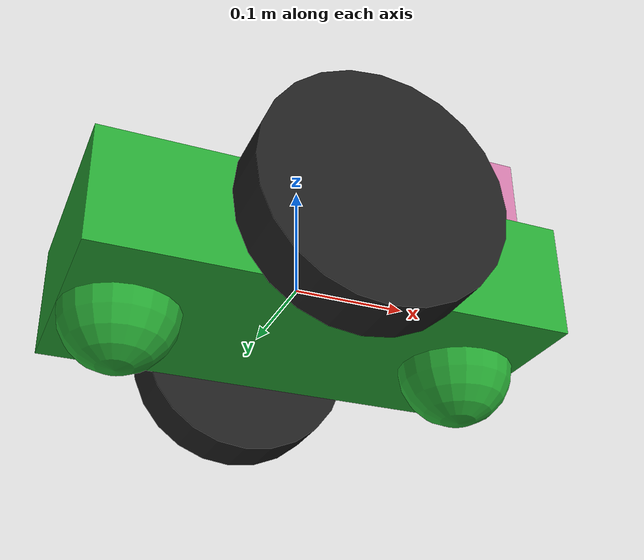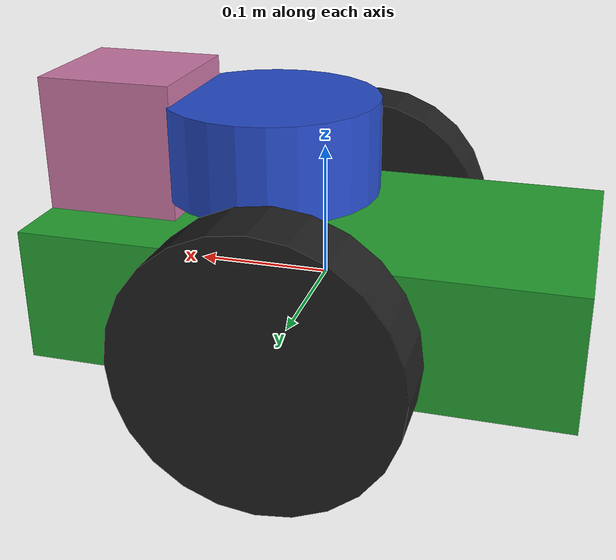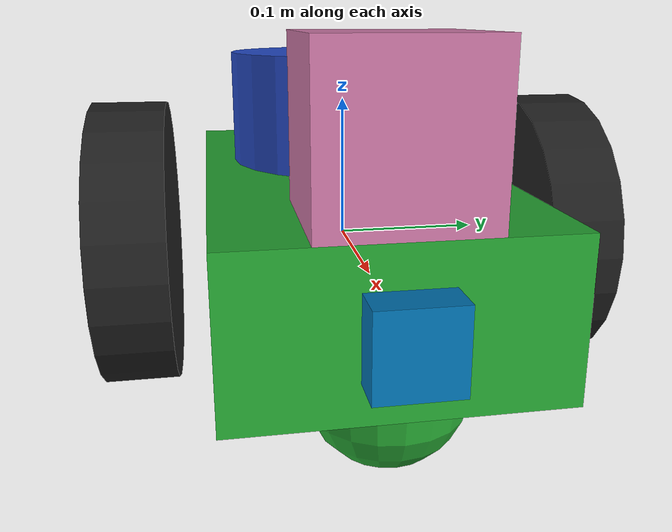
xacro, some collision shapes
<?xml version='1.0'?>

<robot name="my_robot" xmlns:xacro="http://www.ros.org/wiki/xacro">
<xacro:include filename="$(find my_robot)/urdf/my_robot.gazebo" />

  <link name="robot_footprint"></link>

  <joint name="robot_footprint_joint" type="fixed">
    <origin xyz="0 0 0" rpy="0 0 0" />
    <parent link="robot_footprint"/>
    <child link="chassis" />
  </joint>

  <link name='chassis'>
    <pose>0 0 0.1 0 0 0</pose>

    <inertial>
      <mass value="15.0"/>
      <origin xyz="0.0 0 0" rpy=" 0 0 0"/>
      <inertia
          ixx="0.1" ixy="0" ixz="0"
          iyy="0.1" iyz="0"
          izz="0.1"
      />
    </inertial>

    <collision name='collision'>
      <origin xyz="0 0 0" rpy=" 0 0 0"/>
      <geometry>
        <box size=".4 .2 .1"/>
      </geometry>
    </collision>

    <visual name='chassis_visual'>
      <origin xyz="0 0 0" rpy=" 0 0 0"/>
      <geometry>
        <box size=".4 .2 .1"/>
      </geometry>
    </visual>

    <collision name='back_caster_collision'>
      <origin xyz="-0.15 0 -0.05" rpy=" 0 0 0"/>
      <geometry>
        <sphere radius="0.0499"/>
      </geometry>
    </collision>

    <visual name='back_caster_visual'>
      <origin xyz="-0.15 0 -0.05" rpy=" 0 0 0"/>
      <geometry>
        <sphere radius="0.05"/>
      </geometry>
    </visual>

    <collision name='front_caster_collision'>
      <origin xyz="0.15 0 -0.05" rpy=" 0 0 0"/>
      <geometry>
        <sphere radius="0.0499"/>
      </geometry>
    </collision>

    <visual name='front_caster_visual'>
      <origin xyz="0.15 0 -0.05" rpy=" 0 0 0"/>
      <geometry>
        <sphere radius="0.05"/>
      </geometry>
    </visual>
 </link>
  <gazebo reference="chassis">
    <material>Gazebo/Green</material>
</gazebo>

   <link name="left_wheel">

    <collision name="left_wheel_collision">
      <origin xyz="0 0 0" rpy="0 1.5707 1.5707"/>
      <geometry>
        <cylinder radius="0.1" length="0.05"/>
      </geometry>
    </collision>

    <visual name="left_wheel_visual">
      <origin xyz="0 0 0" rpy="0 1.5707 1.5707"/>

      <geometry>
        <cylinder radius="0.1" length="0.05"/>
      </geometry>
    </visual>

     <inertial>
      <mass value="5.0"/>
      <origin xyz="0.0 0 0" rpy=" 0 1.5707 1.5707"/>
      <geometry>
        <cylinder radius="0.1" length="0.05"/>
      </geometry>
      <inertia
          ixx="0.1" ixy="0" ixz="0"
          iyy="0.1" iyz="0"
          izz="0.1"
      />
    </inertial>
    </link>
    <gazebo reference="left_wheel">
    <material>Gazebo/Black</material>
</gazebo>

    <joint type="continuous" name="left_wheel_hinge">
    <origin xyz="0 0.15 0" rpy="0 0 0"/>
    <child link="left_wheel"/>
    <parent link="chassis"/>
    <axis xyz="0 1 0" rpy="0 0 0"/>
    <limit effort="10000" velocity="1000"/>
    <dynamics damping="1.0" friction="1.0"/>
  </joint>

  <link name="right_wheel">

    <collision name="right_wheel_collision">
      <origin xyz="0 0 0" rpy="0 1.5707 1.5707"/>
      <geometry>
        <cylinder radius="0.1" length="0.05"/>
      </geometry>
    </collision>

    <visual name="right_wheel_visual">
      <origin xyz="0 0 0" rpy="0 1.5707 1.5707"/>

      <geometry>
        <cylinder radius="0.1" length="0.05"/>
      </geometry>
    </visual>

    <inertial>
      <mass value="5.0"/>
      <origin xyz="0.0 0 0" rpy=" 0 1.5707 1.5707"/>
      <inertia
          ixx="0.1" ixy="0" ixz="0"
          iyy="0.1" iyz="0"
          izz="0.1"
      />
    </inertial>
   </link>
     <gazebo reference="right_wheel">
    <material>Gazebo/Black</material>
</gazebo>

    <joint type="continuous" name="right_wheel_hinge">
    <origin xyz="0 -0.15 0" rpy="0 0 0"/>
    <child link="right_wheel"/>
    <parent link="chassis"/>
    <axis xyz="0 1 0" rpy="0 0 0"/>
    <limit effort="10000" velocity="1000"/>
    <dynamics damping="1.0" friction="1.0"/>
  </joint>

  <link name="camera">

      <collision name="camera_collision">
      <origin xyz="0 0 0" rpy='0 0 0'/>
      <geometry>
        <box size="0.05 0.05 0.05"/>
      </geometry>
    </collision>

    <visual name="camera_visual">
      <origin xyz="0 0 0" rpy='0 0 0'/>
      <geometry>
        <box size="0.05 0.05 0.05"/>
      </geometry>
    </visual>

    <inertial>
      <origin xyz="0 0 0" rpy="0 0 0"/>
      <mass value="0.1"/>
      <geometry>
        <box size="0.05 0.05 0.05"/>
      </geometry>
      <inertia
         ixx="1e-6" ixy="0" ixz="0"
          iyy="1e-6" iyz="0"
          izz="1e-6"
       />
    </inertial>
</link>

<joint name="camera_joint" type="fixed">
  <origin xyz="0.2 0 0 " rpy="0 0 0"/>
  <parent link="chassis"/>
  <child link ="camera"/>
  <axis xyz="0 1 0" rpy="0 0 0"/>
  </joint>
 <joint name="camera_optical_joint" type="fixed">
    <origin xyz="0 0 0" rpy="-1.5707 0 -1.5707"/>
    <parent link="camera"/>
    <child link="camera_link_optical"/>
  </joint>

  <link name="camera_link_optical">
  </link>
<link name="hokuyo">

      <collision name="hokuyo_collision">
      <origin xyz="0 0 0" rpy='0 0 0'/>
      <geometry>
        <box size="0.1 0.1 0.1"/>
      </geometry>
    </collision>

    <visual name="hokuyo_visual">
      <origin xyz="0 0 0" rpy='0 0 0'/>
      <geometry>
          <mesh filename="package://my_robot/meshes/hokuyo.dae"/>
      </geometry>
    </visual>

    <inertial>
      <origin xyz="0 0 0" rpy="0 0 0"/>
      <mass value="1e-5"/>
      <inertia
         ixx="1e-6" ixy="0" ixz="0"
          iyy="1e-6" iyz="0"
          izz="1e-6"
       />
    </inertial>
</link>

<joint name="hokuyo_joint" type="fixed">
  <origin xyz="0.15 0 0.1 " rpy="0 0 0"/>
  <parent link="chassis"/>
  <child link ="hokuyo"/>
  <axis xyz="0 1 0" rpy="0 0 0"/>
  </joint>

<link name="burrow">

    <collision name="burrow_collision">
      <origin xyz="0 0 0" rpy="0 1.5707 1.5707"/>
      <geometry>
        <cylinder radius="0.1" length="0.05"/>
      </geometry>
    </collision>

    <visual name="burrow_visual">
      <origin xyz="-0.13 0 0" rpy="0 0 0"/>

      <geometry>
        <cylinder radius="0.08" length="0.07"/>
      </geometry>
    </visual>

     <inertial>
      <mass value="5.0"/>
      <origin xyz="0.0 0 0" rpy=" 0 1.5707 1.5707"/>
      <geometry>
        <cylinder radius="0.08" length="0.07"/>
      </geometry>
      <inertia
          ixx="0.1" ixy="0" ixz="0"
          iyy="0.1" iyz="0"
          izz="0.1"
      />
    </inertial>
    </link>

    <joint name="burrow_joint" type="fixed">
  <origin xyz="0.17 0 0.1 " rpy="0 0 0"/>
  <parent link="chassis"/>
  <child link ="burrow"/>
  <axis xyz="0 1 0" rpy="0 0 0"/>
  </joint>

    <gazebo reference="left_wheel">
    <material>Gazebo/Black</material>
</gazebo>

  <gazebo reference="burrow">
    <material>Gazebo/Blue</material>
</gazebo>

</robot>
